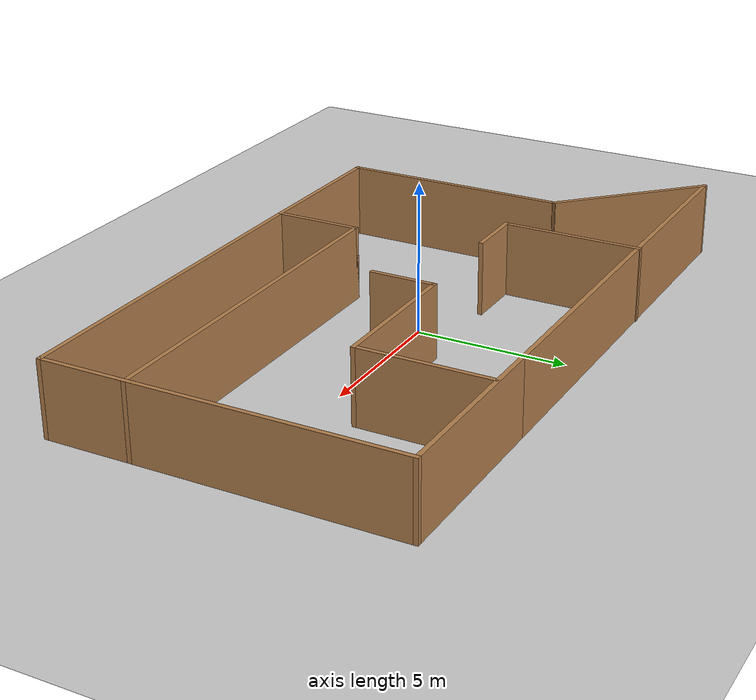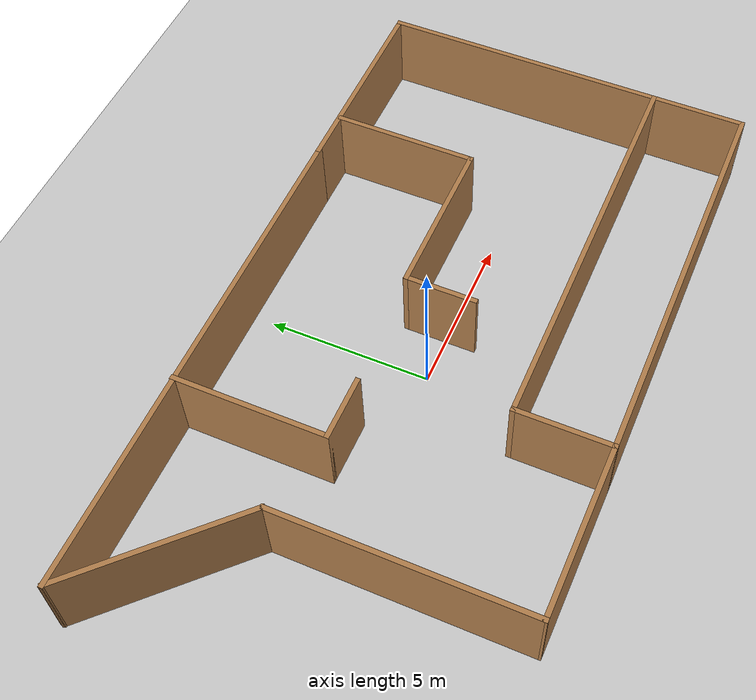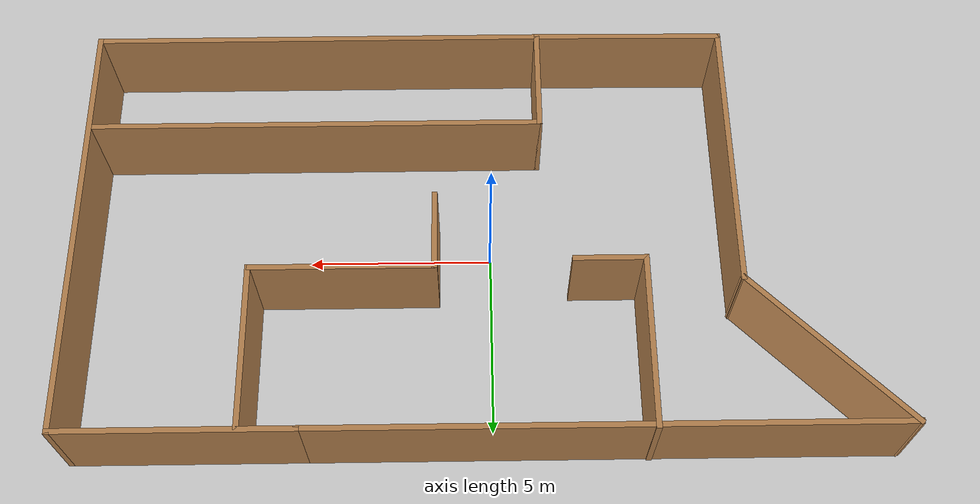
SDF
<sdf version="1.6">
 <world name="default">
  <light name="sun" type="directional">
   <pose>0 0 10 0 -0 0</pose>
   <diffuse>0.8 0.8 0.8 1</diffuse>
   <specular>0.2 0.2 0.2 1</specular>
   <attenuation>
    <range>1000</range>
    <constant>0.9</constant>
    <linear>0.01</linear>
    <quadratic>0.001</quadratic>
   </attenuation>
   <direction>-0.5 0.1 -0.9</direction>
  </light>
  <model name="ground_plane">
   <static>1</static>
   <link name="link">
    <collision name="collision">
     <geometry><plane><normal>0 0 1</normal><size>100 100</size></plane></geometry>
     <surface><friction><ode><mu>100</mu><mu2>50</mu2></ode></friction></surface>
    </collision>
    <visual name="visual">
     <cast_shadows>0</cast_shadows>
     <geometry><plane><normal>0 0 1</normal><size>100 100</size></plane></geometry>
     <material>
      <script><uri>file://media/materials/scripts/gazebo.material</uri><name>Gazebo/Grey</name></script>
     </material>
    </visual>
   </link>
  </model>
  <gravity>0 0 -9.8</gravity>
  <magnetic_field>6e-06 2.3e-05 -4.2e-05</magnetic_field>
  <atmosphere type="adiabatic"/>
  <physics name="default_physics" default="0" type="ode">
   <max_step_size>0.001</max_step_size>
   <real_time_factor>1</real_time_factor>
   <real_time_update_rate>1000</real_time_update_rate>
  </physics>
  <scene><ambient>0.4 0.4 0.4 1</ambient><background>0.7 0.7 0.7 1</background><shadows>1</shadows></scene>
  <spherical_coordinates>
   <surface_model>EARTH_WGS84</surface_model>
   <latitude_deg>0</latitude_deg>
   <longitude_deg>0</longitude_deg>
   <elevation>0</elevation>
   <heading_deg>0</heading_deg>
  </spherical_coordinates>
  <model name="home">
   <pose>0.22347 -0.106207 0 0 -0 0</pose>
   <link name="Wall_0">
    <collision name="Wall_0_Collision">
     <geometry><box><size>3 0.15 2.5</size></box></geometry>
     <pose>0 0 1.25 0 -0 0</pose>
    </collision>
    <visual name="Wall_0_Visual">
     <pose>0 0 1.25 0 -0 0</pose>
     <geometry><box><size>3 0.15 2.5</size></box></geometry>
     <material>
      <script><uri>file://media/materials/scripts/gazebo.material</uri><name>Gazebo/Wood</name></script>
      <ambient>1 1 1 1</ambient>
     </material>
     <meta><layer>0</layer></meta>
    </visual>
    <pose>-1.60947 -4.39024 0 0 0 -1.5708</pose>
   </link>
   <link name="Wall_12">
    <collision name="Wall_12_Collision">
     <geometry><box><size>12.5 0.15 2.5</size></box></geometry>
     <pose>0 0 1.25 0 -0 0</pose>
    </collision>
    <visual name="Wall_12_Visual">
     <pose>0 0 1.25 0 -0 0</pose>
     <geometry><box><size>12.5 0.15 2.5</size></box></geometry>
     <material>
      <script><uri>file://media/materials/scripts/gazebo.material</uri><name>Gazebo/Wood</name></script>
      <ambient>1 1 1 1</ambient>
     </material>
     <meta><layer>0</layer></meta>
    </visual>
    <pose>4.56553 -2.96524 0 0 -0 0</pose>
   </link>
   <link name="Wall_14">
    <collision name="Wall_14_Collision">
     <geometry><box><size>4.5 0.15 2.5</size></box></geometry>
     <pose>0 0 1.25 0 -0 0</pose>
    </collision>
    <visual name="Wall_14_Visual">
     <pose>0 0 1.25 0 -0 0</pose>
     <geometry><box><size>4.5 0.15 2.5</size></box></geometry>
     <material>
      <script><uri>file://media/materials/scripts/gazebo.material</uri><name>Gazebo/Wood</name></script>
      <ambient>1 1 1 1</ambient>
     </material>
     <meta><layer>0</layer></meta>
    </visual>
    <pose>6.11311 3.55979 0 0 0 -1.5708</pose>
   </link>
   <link name="Wall_15">
    <collision name="Wall_15_Collision">
     <geometry><box><size>5 0.15 2.5</size></box></geometry>
     <pose>0 0 1.25 0 -0 0</pose>
    </collision>
    <visual name="Wall_15_Visual">
     <pose>0 0 1.25 0 -0 0</pose>
     <geometry><box><size>5 0.15 2.5</size></box></geometry>
     <material>
      <script><uri>file://media/materials/scripts/gazebo.material</uri><name>Gazebo/Wood</name></script>
      <ambient>1 1 1 1</ambient>
     </material>
     <meta><layer>0</layer></meta>
    </visual>
    <pose>3.68811 1.38479 0 0 -0 3.14159</pose>
   </link>
   <link name="Wall_16">
    <collision name="Wall_16_Collision">
     <geometry><box><size>2.25 0.15 2.5</size></box></geometry>
     <pose>0 0 1.25 0 -0 0</pose>
    </collision>
    <visual name="Wall_16_Visual">
     <pose>0 0 1.25 0 -0 0</pose>
     <geometry><box><size>2.25 0.15 2.5</size></box></geometry>
     <material>
      <script><uri>file://media/materials/scripts/gazebo.material</uri><name>Gazebo/Wood</name></script>
      <ambient>1 1 1 1</ambient>
     </material>
     <meta><layer>0</layer></meta>
    </visual>
    <pose>1.26311 0.334788 0 0 0 -1.5708</pose>
   </link>
   <link name="Wall_18">
    <collision name="Wall_18_Collision">
     <geometry><box><size>4.75 0.15 2.5</size></box></geometry>
     <pose>0 0 1.25 0 -0 0</pose>
    </collision>
    <visual name="Wall_18_Visual">
     <pose>0 0 1.25 0 -0 0</pose>
     <geometry><box><size>4.75 0.15 2.5</size></box></geometry>
     <material>
      <script><uri>file://media/materials/scripts/gazebo.material</uri><name>Gazebo/Wood</name></script>
      <ambient>1 1 1 1</ambient>
     </material>
     <meta><layer>0</layer></meta>
    </visual>
    <pose>-4.26097 3.51459 0 0 0 -1.5708</pose>
   </link>
   <link name="Wall_19">
    <collision name="Wall_19_Collision">
     <geometry><box><size>2 0.15 2.5</size></box></geometry>
     <pose>0 0 1.25 0 -0 0</pose>
    </collision>
    <visual name="Wall_19_Visual">
     <pose>0 0 1.25 0 -0 0</pose>
     <geometry><box><size>2 0.15 2.5</size></box></geometry>
     <material>
      <script><uri>file://media/materials/scripts/gazebo.material</uri><name>Gazebo/Wood</name></script>
      <ambient>1 1 1 1</ambient>
     </material>
     <meta><layer>0</layer></meta>
    </visual>
    <pose>-3.33597 1.21459 0 0 -0 0</pose>
   </link>
   <link name="Wall_2">
    <collision name="Wall_2_Collision">
     <geometry><box><size>12.5 0.15 2.5</size></box></geometry>
     <pose>0 0 1.25 0 -0 0</pose>
    </collision>
    <visual name="Wall_2_Visual">
     <pose>0 0 1.25 0 -0 0</pose>
     <geometry><box><size>12.5 0.15 2.5</size></box></geometry>
     <material>
      <script><uri>file://media/materials/scripts/gazebo.material</uri><name>Gazebo/Wood</name></script>
      <ambient>1 1 1 1</ambient>
     </material>
     <meta><layer>0</layer></meta>
    </visual>
    <pose>4.56553 -5.81524 0 0 -0 0</pose>
   </link>
   <link name="Wall_3">
    <collision name="Wall_3_Collision">
     <geometry><box><size>11.75 0.15 2.5</size></box></geometry>
     <pose>0 0 1.25 0 -0 0</pose>
    </collision>
    <visual name="Wall_3_Visual">
     <pose>0 0 1.25 0 -0 0</pose>
     <geometry><box><size>11.75 0.15 2.5</size></box></geometry>
     <material>
      <script><uri>file://media/materials/scripts/gazebo.material</uri><name>Gazebo/Wood</name></script>
      <ambient>1 1 1 1</ambient>
     </material>
     <meta><layer>0</layer></meta>
    </visual>
    <pose>10.7405 -0.015241 0 0 -0 1.5708</pose>
   </link>
   <link name="Wall_4">
    <collision name="Wall_4_Collision">
     <geometry><box><size>6.25 0.15 2.5</size></box></geometry>
     <pose>0 0 1.25 0 -0 0</pose>
    </collision>
    <visual name="Wall_4_Visual">
     <pose>0 0 1.25 0 -0 0</pose>
     <geometry><box><size>6.25 0.15 2.5</size></box></geometry>
     <material>
      <script><uri>file://media/materials/scripts/gazebo.material</uri><name>Gazebo/Wood</name></script>
      <ambient>1 1 1 1</ambient>
     </material>
     <meta><layer>0</layer></meta>
    </visual>
    <pose>7.69053 5.78476 0 0 -0 3.14159</pose>
   </link>
   <link name="Wall_5">
    <collision name="Wall_5_Collision">
     <geometry><box><size>15.5 0.15 2.5</size></box></geometry>
     <pose>0 0 1.25 0 -0 0</pose>
    </collision>
    <visual name="Wall_5_Visual">
     <pose>0 0 1.25 0 -0 0</pose>
     <geometry><box><size>15.5 0.15 2.5</size></box></geometry>
     <material>
      <script><uri>file://media/materials/scripts/gazebo.material</uri><name>Gazebo/Wood</name></script>
      <ambient>1 1 1 1</ambient>
     </material>
     <meta><layer>0</layer></meta>
    </visual>
    <pose>-3.03447 5.78476 0 0 -0 3.14159</pose>
   </link>
   <link name="Wall_6">
    <collision name="Wall_6_Collision">
     <geometry><box><size>5.75 0.15 2.5</size></box></geometry>
     <pose>0 0 1.25 0 -0 0</pose>
    </collision>
    <visual name="Wall_6_Visual">
     <pose>0 0 1.25 0 -0 0</pose>
     <geometry><box><size>5.75 0.15 2.5</size></box></geometry>
     <material>
      <script><uri>file://media/materials/scripts/gazebo.material</uri><name>Gazebo/Wood</name></script>
      <ambient>1 1 1 1</ambient>
     </material>
     <meta><layer>0</layer></meta>
    </visual>
    <pose>-8.72957 3.80486 0 0 0 -0.785398</pose>
   </link>
   <link name="Wall_7">
    <collision name="Wall_7_Collision">
     <geometry><box><size>7.75 0.15 2.5</size></box></geometry>
     <pose>0 0 1.25 0 -0 0</pose>
    </collision>
    <visual name="Wall_7_Visual">
     <pose>0 0 1.25 0 -0 0</pose>
     <geometry><box><size>7.75 0.15 2.5</size></box></geometry>
     <material>
      <script><uri>file://media/materials/scripts/gazebo.material</uri><name>Gazebo/Wood</name></script>
      <ambient>1 1 1 1</ambient>
     </material>
     <meta><layer>0</layer></meta>
    </visual>
    <pose>-6.74967 -1.97504 0 0 0 -1.5708</pose>
   </link>
   <link name="Wall_8">
    <collision name="Wall_8_Collision">
     <geometry><box><size>5.29036 0.15 2.5</size></box></geometry>
     <pose>0 0 1.25 0 -0 0</pose>
    </collision>
    <visual name="Wall_8_Visual">
     <pose>0 0 1.25 0 -0 0</pose>
     <geometry><box><size>5.29036 0.15 2.5</size></box></geometry>
     <material>
      <script><uri>file://media/materials/scripts/gazebo.material</uri><name>Gazebo/Wood</name></script>
      <ambient>1 1 1 1</ambient>
     </material>
     <meta><layer>0</layer></meta>
    </visual>
    <pose>-4.17957 -5.79514 0 0 0 -0.007821</pose>
   </link>
   <static>1</static>
  </model>
 </world>
</sdf>
